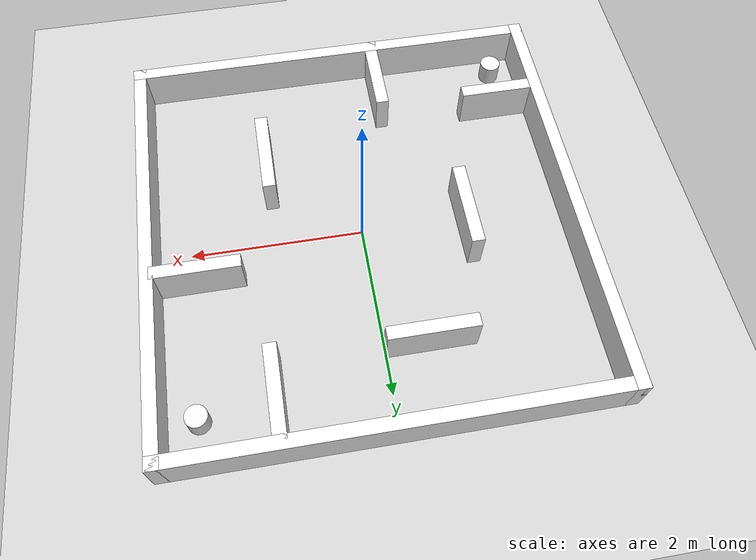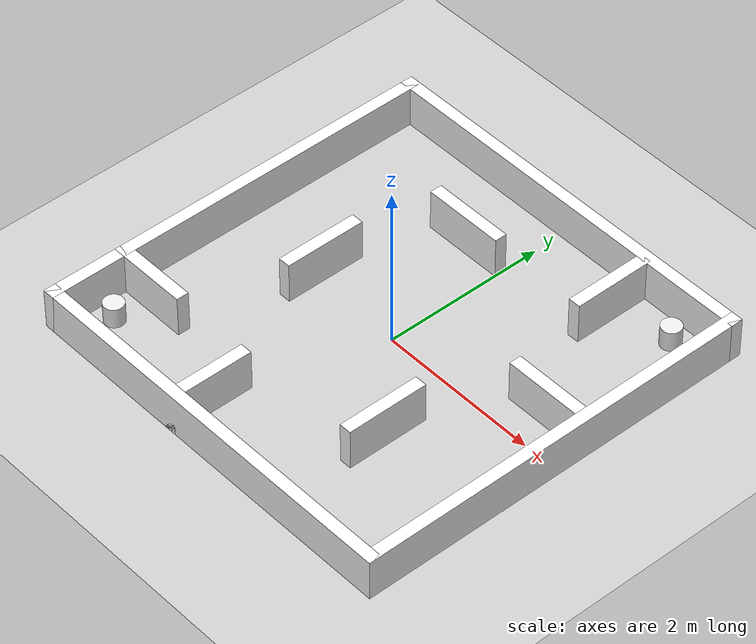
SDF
<?xml version="1.0"?>
<sdf version="1.8">
  <world name="dqn">

    <plugin
      filename="gz-sim-physics-system"
      name="gz::sim::systems::Physics">
    </plugin>
    <plugin
      filename="gz-sim-user-commands-system"
      name="gz::sim::systems::UserCommands">
    </plugin>
    <plugin
      filename="gz-sim-scene-broadcaster-system"
      name="gz::sim::systems::SceneBroadcaster">
    </plugin>
    <plugin
      filename="gz-sim-sensors-system"
      name="gz::sim::systems::Sensors">
      <render_engine>ogre2</render_engine>
    </plugin>
    <plugin
      filename="gz-sim-imu-system"
      name="gz::sim::systems::Imu">
    </plugin>

    <physics type="ode">
      <real_time_update_rate>1000.0</real_time_update_rate>
      <max_step_size>0.001</max_step_size>
      <real_time_factor>1</real_time_factor>
      <ode>
        <solver>
          <type>quick</type>
          <iters>150</iters>
          <precon_iters>0</precon_iters>
          <sor>1.400000</sor>
          <use_dynamic_moi_rescaling>1</use_dynamic_moi_rescaling>
        </solver>
        <constraints>
          <cfm>0.00001</cfm>
          <erp>0.2</erp>
          <contact_max_correcting_vel>2000.000000</contact_max_correcting_vel>
          <contact_surface_layer>0.01000</contact_surface_layer>
        </constraints>
      </ode>
    </physics>

    <include>
      <uri>https://fuel.gazebosim.org/1.0/OpenRobotics/models/Ground Plane</uri>
    </include>

    <light type="directional" name="sun">
      <cast_shadows>false</cast_shadows>
      <pose>0 0 10 0 0 0</pose>
      <diffuse>0.8 0.8 0.8 1</diffuse>
      <specular>0.2 0.2 0.2 1</specular>
      <attenuation>
        <range>1000</range>
        <constant>0.9</constant>
        <linear>0.01</linear>
        <quadratic>0.001</quadratic>
      </attenuation>
      <direction>-0.5 0.1 -0.9</direction>
    </light>

    <include>
      <uri>model://turtlebot3_dqn_world</uri>
    </include>
    <include>
      <uri>model://turtlebot3_dqn_world/inner_walls</uri>
    </include>
    <include>
      <uri>model://turtlebot3_dqn_world/obstacle1</uri>
      <plugin name="turtlebot3_gazebo::Obstacle1Plugin" filename="libobstacle1.so"/>
    </include>
    <include>
      <uri>model://turtlebot3_dqn_world/obstacle2</uri>
      <plugin name="turtlebot3_gazebo::Obstacle2Plugin" filename="libobstacle2.so"/>
    </include>

  </world>
</sdf>

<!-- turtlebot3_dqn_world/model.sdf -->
<sdf version='1.8'>
  <model name='turtlebot3_square'>
    <pose>0 0 0 0 0 0</pose>
    <static>true</static>

    <link name='Wall_1'>
      <pose>2.425 0 0.25 0 0 1.5708</pose>
      <collision name='Wall_1_Collision'>
        <geometry>
          <box>
            <size>5 0.15 0.5</size>
          </box>
        </geometry>
      </collision>
      <visual name='Wall_1_Visual'>
        <pose>0 0 0 0 0 0</pose>
        <geometry>
          <box>
            <size>5 0.15 0.5</size>
          </box>
        </geometry>
        <material>
          <pbr>
            <metal>
              <albedo_map>textures/wood.png</albedo_map>
            </metal>
          </pbr>
          <ambient>1 1 1 1</ambient>
          <diffuse>1 1 1 1</diffuse>
          <specular>0.2 0.2 0.2 1</specular>
          <emissive>0 0 0 1</emissive>
        </material>
      </visual>
    </link>

    <link name='Wall_2'>
      <pose>0 2.425 0.25 0 0 0</pose>
      <collision name='Wall_2_Collision'>
        <geometry>
          <box>
            <size>5 0.15 0.5</size>
          </box>
        </geometry>
      </collision>
      <visual name='Wall_2_Visual'>
        <pose>0 0 0 0 0 0</pose>
        <geometry>
          <box>
            <size>5 0.15 0.5</size>
          </box>
        </geometry>
        <material>
          <pbr>
            <metal>
              <albedo_map>textures/wood.png</albedo_map>
            </metal>
          </pbr>
          <ambient>1 1 1 1</ambient>
          <diffuse>1 1 1 1</diffuse>
          <specular>0.2 0.2 0.2 1</specular>
          <emissive>0 0 0 1</emissive>
        </material>
      </visual>
    </link>

    <link name='Wall_3'>
      <pose>-2.425 0 0.25 0 0 1.5708</pose>
      <collision name='Wall_3_Collision'>
        <geometry>
          <box>
            <size>5 0.15 0.5</size>
          </box>
        </geometry>
      </collision>
      <visual name='Wall_3_Visual'>
        <pose>0 0 0 0 0 0</pose>
        <geometry>
          <box>
            <size>5 0.15 0.5</size>
          </box>
        </geometry>
        <material>
          <pbr>
            <metal>
              <albedo_map>textures/wood.png</albedo_map>
            </metal>
          </pbr>
          <ambient>1 1 1 1</ambient>
          <diffuse>1 1 1 1</diffuse>
          <specular>0.2 0.2 0.2 1</specular>
          <emissive>0 0 0 1</emissive>
        </material>
      </visual>
    </link>

    <link name='Wall_4'>
      <pose>0 -2.425 0.25 0 0 0</pose>
      <collision name='Wall_4_Collision'>
        <geometry>
          <box>
            <size>5 0.15 0.5</size>
          </box>
        </geometry>
      </collision>
      <visual name='Wall_4_Visual'>
        <pose>0 0 0 0 0 0</pose>
        <geometry>
          <box>
            <size>5 0.15 0.5</size>
          </box>
        </geometry>
        <material>
          <pbr>
            <metal>
              <albedo_map>textures/wood.png</albedo_map>
            </metal>
          </pbr>
          <ambient>1 1 1 1</ambient>
          <diffuse>1 1 1 1</diffuse>
          <specular>0.2 0.2 0.2 1</specular>
          <emissive>0 0 0 1</emissive>
        </material>
      </visual>
    </link>

  </model>
</sdf>

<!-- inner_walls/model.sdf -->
<sdf version='1.8'>
  <model name='inner_walls'>
    <pose>0 0 0 0 0 0</pose>
    <static>true</static>
    <link name='inner_wall_1'>
      <pose>-2.0 -1.5 0.25 0 0 0</pose>
      <collision name='inner_wall_1_collision'>
        <geometry>
          <box>
            <size>1 0.15 0.5</size>
          </box>
        </geometry>
      </collision>
      <visual name='inner_wall_visual'>
        <geometry>
          <box>
            <size>1 0.15 0.5</size>
          </box>
        </geometry>
        <material>
          <pbr>
            <metal>
              <albedo_map>textures/wood.png</albedo_map>
            </metal>
          </pbr>
          <ambient>1 1 1 1</ambient>
          <diffuse>1 1 1 1</diffuse>
          <specular>0.2 0.2 0.2 1</specular>
          <emissive>0 0 0 1</emissive>
        </material>
      </visual>
    </link>

    <link name='inner_wall_2'>
      <pose>-0.5 -2.0 0.25 0 0 -1.5708</pose>
      <collision name='inner_wall_2_collision'>
        <geometry>
          <box>
            <size>1 0.15 0.5</size>
          </box>
        </geometry>
      </collision>
      <visual name='inner_wall_2_visual'>
        <geometry>
          <box>
            <size>1 0.15 0.5</size>
          </box>
        </geometry>
        <material>
          <pbr>
            <metal>
              <albedo_map>textures/wood.png</albedo_map>
            </metal>
          </pbr>
          <ambient>1 1 1 1</ambient>
          <diffuse>1 1 1 1</diffuse>
          <specular>0.2 0.2 0.2 1</specular>
          <emissive>0 0 0 1</emissive>
        </material>
      </visual>
    </link>

    <link name='inner_wall_3'>
      <pose>1.0 -1.0 0.25 0 0 1.5708</pose>
      <collision name='inner_wall_3_collision'>
        <geometry>
          <box>
            <size>1 0.15 0.5</size>
          </box>
        </geometry>
      </collision>
      <visual name='inner_wall_3_visual'>
        <geometry>
          <box>
            <size>1 0.15 0.5</size>
          </box>
        </geometry>
        <material>
          <pbr>
            <metal>
              <albedo_map>textures/wood.png</albedo_map>
            </metal>
          </pbr>
          <ambient>1 1 1 1</ambient>
          <diffuse>1 1 1 1</diffuse>
          <specular>0.2 0.2 0.2 1</specular>
          <emissive>0 0 0 1</emissive>
        </material>
      </visual>
    </link>

    <link name='inner_wall_4'>
      <pose>1.2 1.9 0.25 0 0 -1.5708</pose>
      <collision name='inner_wall_4_collision'>
        <geometry>
          <box>
            <size>1 0.15 0.5</size>
          </box>
        </geometry>
      </collision>
      <visual name='inner_wall_4_visual'>
        <geometry>
          <box>
            <size>1 0.15 0.5</size>
          </box>
        </geometry>
        <material>
          <pbr>
            <metal>
              <albedo_map>textures/wood.png</albedo_map>
            </metal>
          </pbr>
          <ambient>1 1 1 1</ambient>
          <diffuse>1 1 1 1</diffuse>
          <specular>0.2 0.2 0.2 1</specular>
          <emissive>0 0 0 1</emissive>
        </material>
      </visual>
    </link>

    <link name='inner_wall_5'>
      <pose>1.9 0.4 0.25 0 0 0</pose>
      <collision name='inner_wall_5_collision'>
        <geometry>
          <box>
            <size>1 0.15 0.5</size>
          </box>
        </geometry>
      </collision>
      <visual name='inner_wall_5_visual'>
        <geometry>
          <box>
            <size>1 0.15 0.5</size>
          </box>
        </geometry>
        <material>
          <pbr>
            <metal>
              <albedo_map>textures/wood.png</albedo_map>
            </metal>
          </pbr>
          <ambient>1 1 1 1</ambient>
          <diffuse>1 1 1 1</diffuse>
          <specular>0.2 0.2 0.2 1</specular>
          <emissive>0 0 0 1</emissive>
        </material>
      </visual>
    </link>

    <link name='inner_wall_6'>
      <pose>-0.5 1.5 0.25 0 0 0</pose>
      <collision name='inner_wall_6_collision'>
        <geometry>
          <box>
            <size>1 0.15 0.5</size>
          </box>
        </geometry>
      </collision>
      <visual name='inner_wall_6_visual'>
        <geometry>
          <box>
            <size>1 0.15 0.5</size>
          </box>
        </geometry>
        <material>
          <pbr>
            <metal>
              <albedo_map>textures/wood.png</albedo_map>
            </metal>
          </pbr>
          <ambient>1 1 1 1</ambient>
          <diffuse>1 1 1 1</diffuse>
          <specular>0.2 0.2 0.2 1</specular>
          <emissive>0 0 0 1</emissive>
        </material>
      </visual>
    </link>

    <link name='inner_wall_7'>
      <pose>-1.2 0.092 0.25 0 0 -1.5708</pose>
      <collision name='inner_wall_7_collision'>
        <geometry>
          <box>
            <size>1 0.15 0.5</size>
          </box>
        </geometry>
      </collision>
      <visual name='inner_wall_7_visual'>
        <geometry>
          <box>
            <size>1 0.15 0.5</size>
          </box>
        </geometry>
        <material>
          <pbr>
            <metal>
              <albedo_map>textures/wood.png</albedo_map>
            </metal>
          </pbr>
          <ambient>1 1 1 1</ambient>
          <diffuse>1 1 1 1</diffuse>
          <specular>0.2 0.2 0.2 1</specular>
          <emissive>0 0 0 1</emissive>
        </material>
      </visual>
    </link>

  </model>
</sdf>

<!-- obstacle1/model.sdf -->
<sdf version='1.8'>
  <model name="obstacle1">
    <pose>2 2 0.25 0 0 0</pose>
    <static>false</static>
    <link name="link">
      <collision name="obstacle1_collision">
        <geometry>
          <cylinder>
            <radius>0.12</radius>
            <length>0.25</length>
          </cylinder>
        </geometry>
      </collision>
      <visual name="obstacle1_visual">
        <geometry>
          <cylinder>
            <radius>0.12</radius>
            <length>0.25</length>
          </cylinder>
        </geometry>
        <material>
          <script>
            <uri>file://media/materials/scripts/gazebo.material</uri>
            <name>Gazebo/White</name>
          </script>
        </material>
      </visual>
    </link>
  </model>
</sdf>

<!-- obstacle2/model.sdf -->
<sdf version='1.8'>
    <model name="obstacle2">
      <pose>-2 -2 0.25 0 0 0</pose>
      <static>false</static>
      <link name="link">
        <collision name="obstacle2_collision">
          <geometry>
            <cylinder>
              <radius>0.12</radius>
              <length>0.25</length>
            </cylinder>
          </geometry>
        </collision>

        <visual name="obstacle2_visual">
          <geometry>
            <cylinder>
              <radius>0.12</radius>
              <length>0.25</length>
            </cylinder>
          </geometry>
          <material>
            <script>
              <uri>file://media/materials/scripts/gazebo.material</uri>
              <name>Gazebo/White</name>
            </script>
          </material>
        </visual>
      </link>
    </model>
</sdf>
